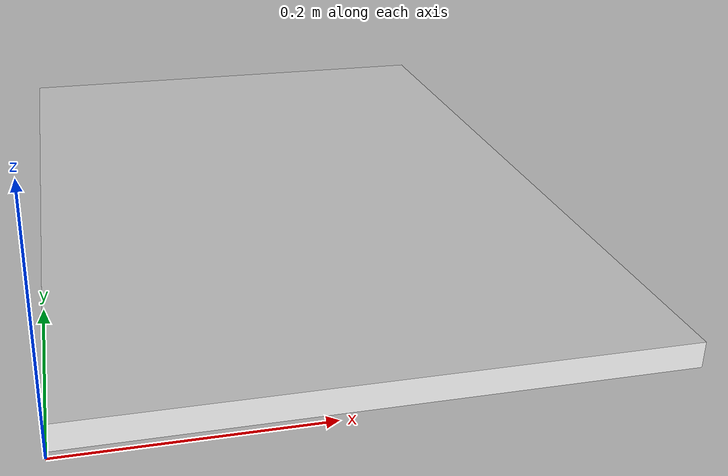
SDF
<?xml version="1.0" ?>
<sdf version="1.5">
  <model name="dashed_picture">
    <static>true</static>
    <pose>0 0 0 0 0 0</pose>
    <link name="body">
      <inertial>
        <mass>5</mass>
        <inertia>
          <ixx>1.0</ixx>
          <ixy>0.0</ixy>
          <iyy>1.0</iyy>
          <ixz>0.0</ixz>
          <iyz>0.0</iyz>
          <izz>1.0</izz>
        </inertia>
        <pose>0 0 0 0 0 0</pose>
      </inertial>
      <collision name="collision">
        <geometry>
          <mesh>
            <uri>model://dashed_picture/meshes/dashed_picture.dae</uri>
          </mesh>
        </geometry>
      </collision>
      <visual name="visual">
        <geometry>
          <mesh>
            <uri>model://dashed_picture/meshes/dashed_picture.dae</uri>
          </mesh>
        </geometry>
      </visual>
    </link>
  </model>
</sdf>
